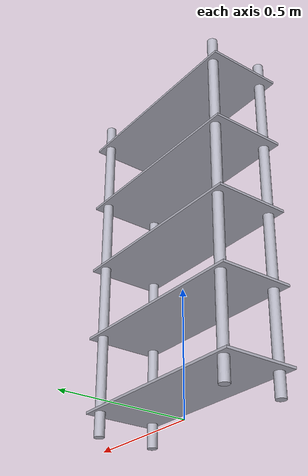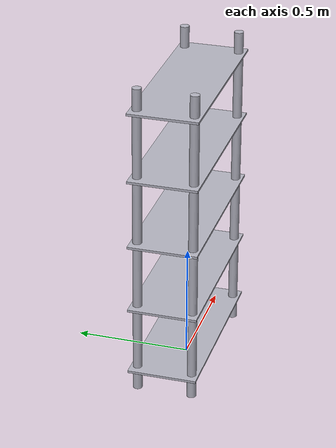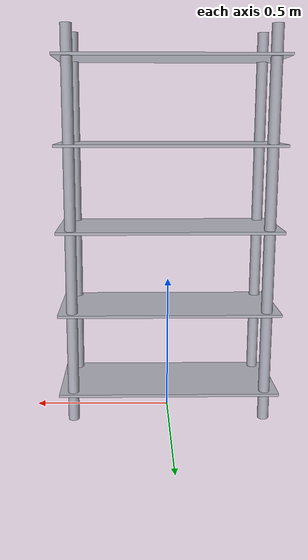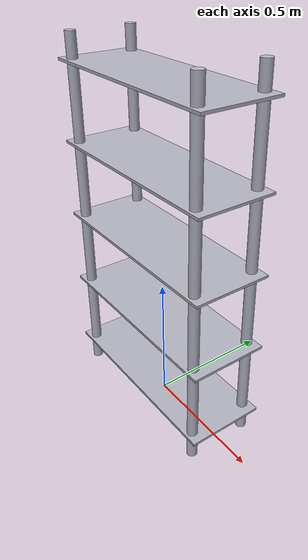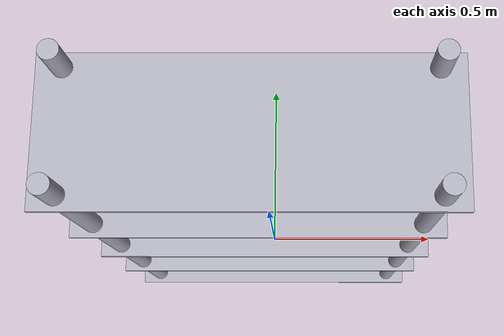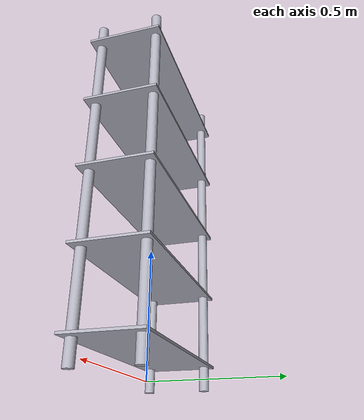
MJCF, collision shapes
<?xml version="1.0" encoding="utf-8"?>
<mujoco model="metal_shelf">
    <compiler angle="radian" meshdir="." />

    <default>
        <default class="shelf">
            <geom conaffinity="1" contype="1" group="1"/>
        </default>
        <default class="shelf_visual">
            <geom conaffinity="0" contype="0" group="2"/>
        </default>
        <default class="shelf_collision">
            <geom conaffinity="1" condim="3" contype="1" group="3" margin="0.001"/>
        </default>
    </default>

    <asset>
        <!-- Mesh asset -->
        <mesh name="metal_shelf_mesh" file="eb_metal_shelf_01.obj" scale="1 1 1"/>
        <!-- Material -->
        <material name="shelf_metal" rgba="0.7 0.7 0.75 1" metallic="0.8" roughness="0.3" />
    </asset>

    <worldbody>
        <body name="metal_shelf" pos="0 0 0">
            <!-- Visual mesh -->
            <geom class="shelf_visual" type="mesh" mesh="metal_shelf_mesh" material="shelf_metal"/>
            <!-- Simple collision boxes for each shelf layer -->
            <geom class="shelf_collision" type="box" size="0.4 0.15 0.005" pos="0 0 0.1" rgba="0.7 0.7 0.75 0.3"/>
            <geom class="shelf_collision" type="box" size="0.4 0.15 0.005" pos="0 0 0.4" rgba="0.7 0.7 0.75 0.3"/>
            <geom class="shelf_collision" type="box" size="0.4 0.15 0.005" pos="0 0 0.7" rgba="0.7 0.7 0.75 0.3"/>
            <geom class="shelf_collision" type="box" size="0.4 0.15 0.005" pos="0 0 1.0" rgba="0.7 0.7 0.75 0.3"/>
            <geom class="shelf_collision" type="box" size="0.4 0.15 0.005" pos="0 0 1.3" rgba="0.7 0.7 0.75 0.3"/>
            <!-- Leg collision cylinders -->
            <geom class="shelf_collision" type="cylinder" size="0.02 0.7" pos="-0.35 -0.12 0.7" rgba="0.7 0.7 0.75 0.3"/>
            <geom class="shelf_collision" type="cylinder" size="0.02 0.7" pos="0.35 -0.12 0.7" rgba="0.7 0.7 0.75 0.3"/>
            <geom class="shelf_collision" type="cylinder" size="0.02 0.7" pos="-0.35 0.12 0.7" rgba="0.7 0.7 0.75 0.3"/>
            <geom class="shelf_collision" type="cylinder" size="0.02 0.7" pos="0.35 0.12 0.7" rgba="0.7 0.7 0.75 0.3"/>
        </body>
    </worldbody>

</mujoco>
